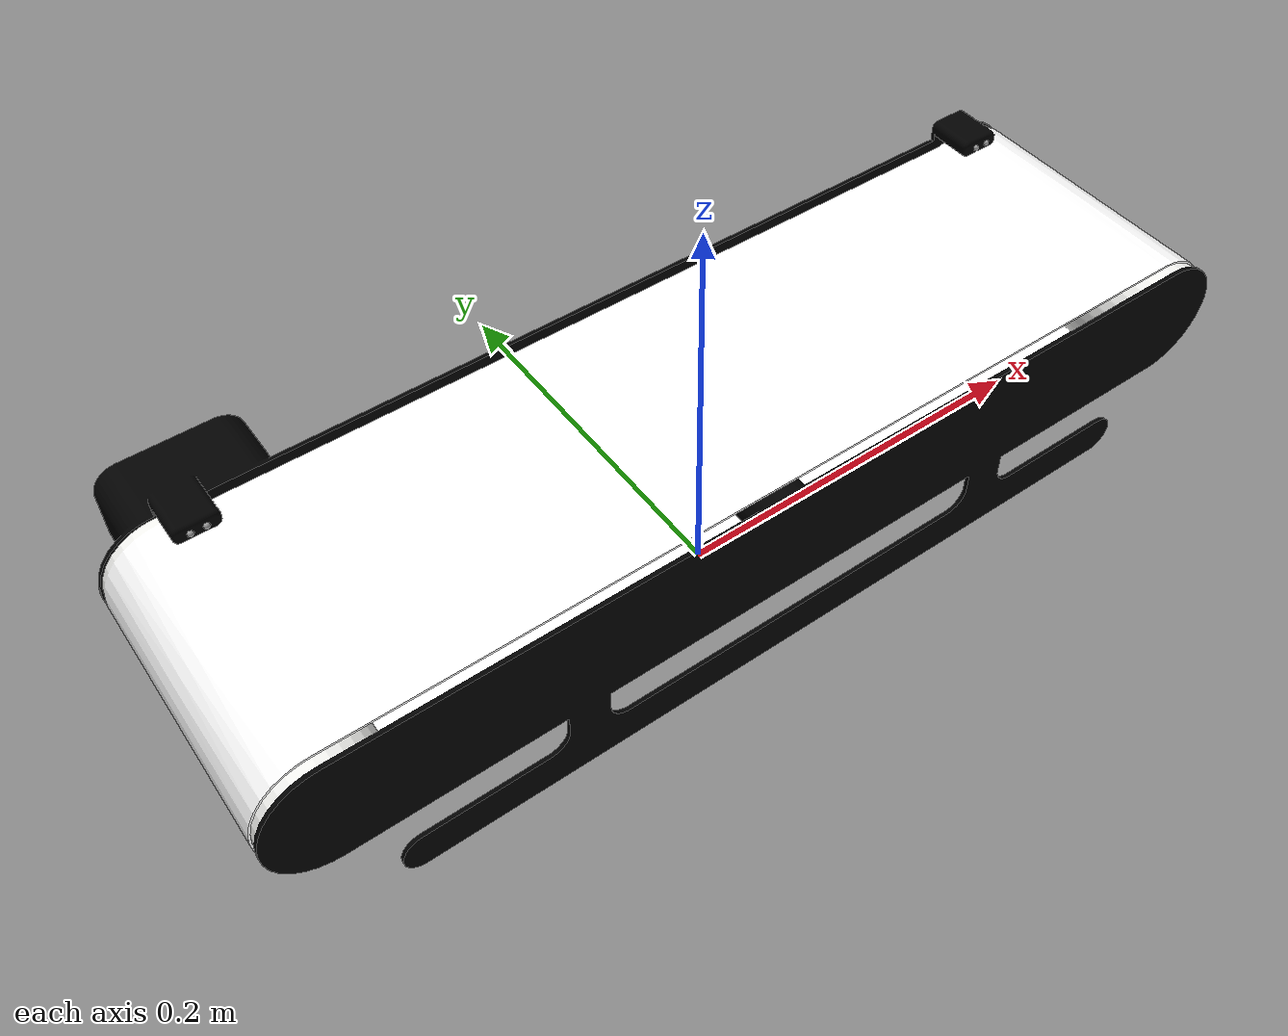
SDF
<sdf version='1.6'>
  <world name='default'>
    <include>
      <uri>model://sun</uri>
    </include>

    <gui fullscreen='0'>
      <camera name='user_camera'>
        <pose frame=''>9.0 -12.0 6.0 0.0 0.3 2.2</pose>
        <view_controller>orbit</view_controller>
        <projection_type>perspective</projection_type>
      </camera>
    </gui>

       <include>
      <uri>model://conveyor_belt</uri>
      <name>conveyor</name>
      <pose>0 0 0.015 0 0 0</pose>
	</include>

           <include>
      <uri>model://ir_sensor_1</uri>
      <name>ir_sensor_1</name>
      <pose>-0.21 0.07 0.120375 0 0 0</pose>
	</include>

	<include>
      <uri>model://ir_sensor_2</uri>
      <name>ir_sensor_2</name>
      <pose>0.21 0.07 0.120375 0 0 0</pose>
	</include>

  </world>
</sdf>

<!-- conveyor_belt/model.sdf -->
<sdf version="1.4">

    <model name="conveyor_belt">

        <model name="conveyorbelt_fixed">

            <static>true</static>

            <link name="belt_visual">
                <visual name="visual">
                    <geometry>
                        <mesh>
                            <scale>1 1 1</scale>
                            <uri>model://conveyor_belt/meshes/conveyor_belt.dae</uri>
                        </mesh>
                    </geometry>
                </visual>
                <collision name="collision">
                    <origin xyz="0.0 0.0 0" rpy="0.0 0.0 0.0"/>
                    <geometry>
                        <mesh>
                            <scale>1 1 1</scale>
                            <uri>model://conveyor_belt/meshes/conveyor_belt.dae</uri>
                        </mesh>
                    </geometry>
                </collision>
            </link>

        </model>

        <model name="conveyorbelt_moving">

            <allow_auto_disable>0</allow_auto_disable>
            <static>false</static>

            <pose>0 0 0.105 0 0 1.57</pose>

            <link name="belt_moving">
                <inertial>
                    <mass>100.0</mass>
                    <inertia>
                        <ixx>0.0</ixx>
                        <ixy>0.0</ixy>
                        <ixz>0.0</ixz>
                        <iyy>0.0</iyy>
                        <iyz>0.0</iyz>
                        <izz>0.0</izz>
                    </inertia>
                </inertial>
                <collision name="belt_collision">
                    <geometry>
                        <box>
                            <size>0.08 0.45 0.00001</size>
                        </box>
                    </geometry>
                    <surface>
                        <friction>
                            <ode>
                                <mu>100.0</mu>
                                <mu2>100.0</mu2>
                            </ode>
                            <torsional>
                                <coefficient>1000.0</coefficient>
                                <patch_radius>0.1</patch_radius>
                            </torsional>
                        </friction>
                    </surface>
                </collision>
            </link>

        </model>

        <joint name="belt_joint" type="prismatic">
            <parent>conveyorbelt_fixed::belt_visual</parent>
            <child>conveyorbelt_moving::belt_moving</child>
            <axis>
                <xyz>1 0 0</xyz>
                <limit>
                    <lower>0.0</lower>
                    <upper>0.01</upper>
                </limit>
            </axis>
        </joint>

        <plugin name="ros2_conveyorbelt_plugin" filename="libros2_conveyorbelt_plugin.so" >
            <ros>
                <namespace></namespace>
            </ros>
            <max_velocity>1.0</max_velocity>
            <publish_rate>1000</publish_rate>
        </plugin>

    </model>

</sdf>

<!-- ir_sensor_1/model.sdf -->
<sdf version="1.6">
  <model name="ir_sensor_1">
    <static>true</static>
    <link name="link">
      <collision name="collision">
        <geometry>
          <box>
            <size>0.019052 0.041619 0.010427</size>
          </box>
        </geometry>
      </collision>
      <sensor name="ir_sensor_1" type="ray">
        <pose> 0 -0.020 0 0 0 -1.57</pose>
        <visualize>true</visualize>
        <update_rate>10</update_rate>
        <ray>
          <scan>
            <horizontal>
              <samples>5</samples>
              <resolution>1</resolution>
              <min_angle>-0.05</min_angle>
              <max_angle>0.05</max_angle>
            </horizontal>
          </scan>
          <range>
            <min>0.01</min>
            <max>0.2</max>
            <resolution>0.02</resolution>
          </range>
        </ray>
        <plugin name="ir_sensor_controller_1" filename="libgazebo_ros_ray_sensor.so">
          <ros>
            <namespace>/conveyor_sensor_ir1</namespace>
            <remapping>~/out:=ir_sensor1</remapping>
          </ros>
          <output_type>sensor_msgs/LaserScan</output_type>
          <frame_name>ir_sensor_1_frame</frame_name>
        </plugin>
      </sensor>
    </link>
  </model>
</sdf>

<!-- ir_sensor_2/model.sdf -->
<sdf version="1.6">
  <model name="ir_sensor_2">
    <static>true</static>
    <link name="link">
      <collision name="collision">
        <geometry>
          <box>
            <size>0.019052 0.041619 0.010427</size>
          </box>
        </geometry>
      </collision>
      <sensor name="ir_sensor_2" type="ray">
        <pose> 0 -0.020 0 0 0 -1.57</pose>
        <visualize>true</visualize>
        <update_rate>10</update_rate>
        <ray>
          <scan>
            <horizontal>
              <samples>5</samples>
              <resolution>1</resolution>
              <min_angle>-0.05</min_angle>
              <max_angle>0.05</max_angle>
            </horizontal>
          </scan>
          <range>
            <min>0.01</min>
            <max>0.2</max>
            <resolution>0.02</resolution>
          </range>
        </ray>
        <plugin name="ir_sensor_controller_2" filename="libgazebo_ros_ray_sensor.so">
          <ros>
            <namespace>/conveyor_sensor_ir2</namespace>
            <remapping>~/out:=ir2_sensor</remapping>
          </ros>
          <output_type>sensor_msgs/LaserScan</output_type>
          <frame_name>ir_sensor_2_frame</frame_name>
        </plugin>
      </sensor>
    </link>
  </model>
</sdf>
